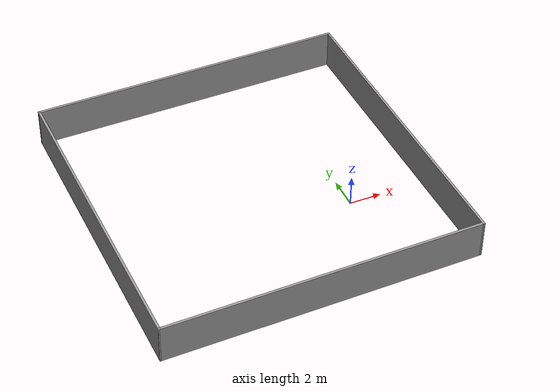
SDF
<?xml version='1.0'?>
<sdf version='1.7'>
  <model name='hacka_wall'>
    <static>true</static>
    <pose>-5.10313 2.97109 0 0 -0 0</pose>
    <link name='Wall_174'>
      <collision name='Wall_174_Collision'>
        <geometry>
          <box>
            <size>20 0.15 2.5</size>
          </box>
        </geometry>
        <pose>0 0 1.25 0 -0 0</pose>
      </collision>
      <visual name='Wall_174_Visual'>
        <pose>0 0 1.25 0 -0 0</pose>
        <geometry>
          <box>
            <size>20 0.15 2.5</size>
          </box>
        </geometry>
        <material>
          <script>
            <uri>file://media/materials/scripts/gazebo.material</uri>
            <name>Gazebo/Grey</name>
          </script>
          <ambient>0 0 0 1</ambient>
        </material>
        <meta>
          <layer>0</layer>
        </meta>
      </visual>
      <pose>-0.017675 9.92498 0 0 -0 0</pose>
    </link>
    <link name='Wall_175'>
      <collision name='Wall_175_Collision'>
        <geometry>
          <box>
            <size>20 0.15 2.5</size>
          </box>
        </geometry>
        <pose>0 0 1.25 0 -0 0</pose>
      </collision>
      <visual name='Wall_175_Visual'>
        <pose>0 0 1.25 0 -0 0</pose>
        <geometry>
          <box>
            <size>20 0.15 2.5</size>
          </box>
        </geometry>
        <material>
          <script>
            <uri>file://media/materials/scripts/gazebo.material</uri>
            <name>Gazebo/Grey</name>
          </script>
          <ambient>0 0 0 1</ambient>
        </material>
        <meta>
          <layer>0</layer>
        </meta>
      </visual>
      <pose>9.925 -0 0 0 -0 -1.56902</pose>
    </link>
    <link name='Wall_177'>
      <collision name='Wall_177_Collision'>
        <geometry>
          <box>
            <size>20 0.15 2.5</size>
          </box>
        </geometry>
        <pose>0 0 1.25 0 -0 0</pose>
      </collision>
      <visual name='Wall_177_Visual'>
        <pose>0 0 1.25 0 -0 0</pose>
        <geometry>
          <box>
            <size>20 0.15 2.5</size>
          </box>
        </geometry>
        <material>
          <script>
            <uri>file://media/materials/scripts/gazebo.material</uri>
            <name>Gazebo/Grey</name>
          </script>
          <ambient>0 0 0 1</ambient>
        </material>
        <meta>
          <layer>0</layer>
        </meta>
      </visual>
      <pose>-9.925 -0 0 0 -0 -1.56902</pose>
    </link>
    <link name='Wall_178'>
      <collision name='Wall_178_Collision'>
        <geometry>
          <box>
            <size>20 0.15 2.5</size>
          </box>
        </geometry>
        <pose>0 0 1.25 0 -0 0</pose>
      </collision>
      <visual name='Wall_178_Visual'>
        <pose>0 0 1.25 0 -0 0</pose>
        <geometry>
          <box>
            <size>20 0.15 2.5</size>
          </box>
        </geometry>
        <material>
          <script>
            <uri>file://media/materials/scripts/gazebo.material</uri>
            <name>Gazebo/Grey</name>
          </script>
          <ambient>0 0 0 1</ambient>
        </material>
        <meta>
          <layer>0</layer>
        </meta>
      </visual>
      <pose>0.017675 -9.92498 0 0 -0 0</pose>
    </link>
    <static>1</static>
  </model>
</sdf>
